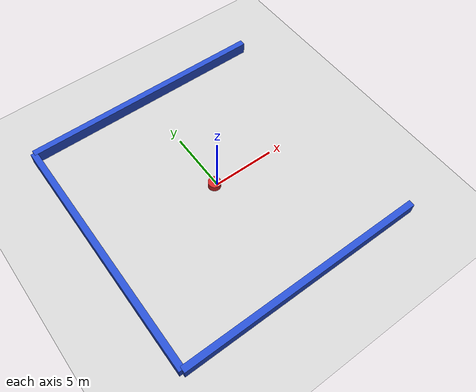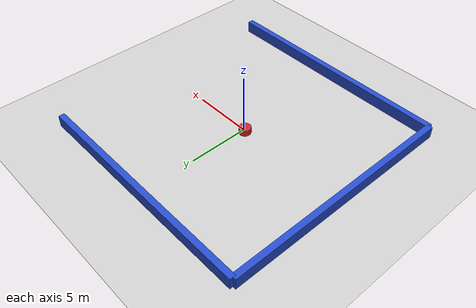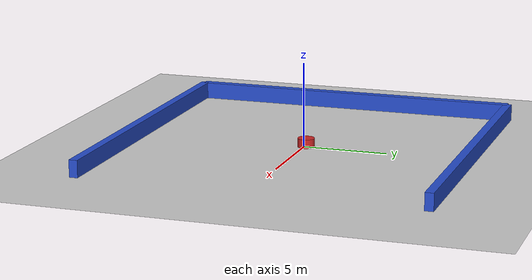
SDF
<?xml version="1.0" ?>
<sdf version="1.6">
   <world name="default">
    <model name="ground_plane">
      <static>1</static>
      <link name="link">
        <collision name="collision">
          <geometry><plane><normal>0 0 1</normal><size>100 100</size></plane></geometry>
          <surface><friction><ode><mu>100</mu><mu2>50</mu2></ode><torsional><ode/></torsional></friction><contact><ode/></contact></surface>
        </collision>
        <visual name="visual">
          <cast_shadows>0</cast_shadows>
          <geometry><plane><normal>0 0 1</normal><size>100 100</size></plane></geometry>
          <material><ambient>0.8 0.8 0.8 1</ambient><diffuse>0.8 0.8 0.8 1</diffuse><specular>0.01 0.01 0.01 1</specular></material>
        </visual>
      </link>
    </model>
    <light name="sun" type="directional">
      <cast_shadows>1</cast_shadows>
      <pose>0 0 10 0 0 0</pose>
      <diffuse>1 1 1 1</diffuse>
      <specular>0.1 0.1 0.1 1</specular>
      <attenuation><range>1000</range><constant>0.9</constant><linear>0.01</linear><quadratic>0.001</quadratic></attenuation>
      <direction>-0.5 0.5 -1</direction>
    </light>

    <model name='hardlibobs_121'>
      <static>1</static>
      <pose frame=''>-0.225000 0.075000 0.000000 0.000000 0.000000 0.000000</pose>
      <link name='link'>
        <inertial>
          <mass>1</mass>
          <inertia>
            <ixx>0.145833</ixx>
            <ixy>0</ixy>
            <ixz>0</ixz>
            <iyy>0.145833</iyy>
            <iyz>0</iyz>
            <izz>0.125</izz>
          </inertia>
        </inertial>
        <collision name='collision'>
           <geometry>
            <cylinder>
                <radius>0.5000</radius>
                 <length> 1 </length>
            </cylinder>
          </geometry>
           <surface>
            <contact>
              <ode/>
            </contact>
            <bounce/>
            <friction>
              <torsional>
                <ode/>
              </torsional>
              <ode/>
            </friction>
          </surface>
        </collision>
        <visual name='visual'>
           <geometry>
            <cylinder>
                <radius>0.5000</radius>
                 <length> 1 </length>
            </cylinder>
          </geometry>
          <material>
            <script>
              <name>Gazebo/Red</name>
              <uri>file://media/materials/scripts/gazebo.material</uri>
            </script>
          </material>
        </visual>
        <self_collide>0</self_collide>
        <kinematic>0</kinematic>
        <gravity>1</gravity>
      </link>
      <plugin name='hardlibobs_121' filename='hardlibobs_121.so'/>
    </model>

    <model name='hardlibobs_14'>
      <static>1</static>
      <pose frame=''>-0.225000 0.075000 0.000000 0.000000 0.000000 0.000000</pose>
      <link name='link'>
        <inertial>
          <mass>1</mass>
          <inertia>
            <ixx>0.145833</ixx>
            <ixy>0</ixy>
            <ixz>0</ixz>
            <iyy>0.145833</iyy>
            <iyz>0</iyz>
            <izz>0.125</izz>
          </inertia>
        </inertial>
        <collision name='collision'>
           <geometry>
            <cylinder>
                <radius>0.5000</radius>
                 <length> 1 </length>
            </cylinder>
          </geometry>
           <surface>
            <contact>
              <ode/>
            </contact>
            <bounce/>
            <friction>
              <torsional>
                <ode/>
              </torsional>
              <ode/>
            </friction>
          </surface>
        </collision>
        <visual name='visual'>
           <geometry>
            <cylinder>
                <radius>0.5000</radius>
                 <length> 1 </length>
            </cylinder>
          </geometry>
          <material>
            <script>
              <name>Gazebo/Red</name>
              <uri>file://media/materials/scripts/gazebo.material</uri>
            </script>
          </material>
        </visual>
        <self_collide>0</self_collide>
        <kinematic>0</kinematic>
        <gravity>1</gravity>
      </link>
      <plugin name='hardlibobs_14' filename='hardlibobs_14.so'/>
    </model>

    <model name='hardlibobs_34'>
      <static>1</static>
      <pose frame=''>-0.225000 0.075000 0.000000 0.000000 0.000000 0.000000</pose>
      <link name='link'>
        <inertial>
          <mass>1</mass>
          <inertia>
            <ixx>0.145833</ixx>
            <ixy>0</ixy>
            <ixz>0</ixz>
            <iyy>0.145833</iyy>
            <iyz>0</iyz>
            <izz>0.125</izz>
          </inertia>
        </inertial>
        <collision name='collision'>
           <geometry>
            <cylinder>
                <radius>0.5000</radius>
                 <length> 1 </length>
            </cylinder>
          </geometry>
           <surface>
            <contact>
              <ode/>
            </contact>
            <bounce/>
            <friction>
              <torsional>
                <ode/>
              </torsional>
              <ode/>
            </friction>
          </surface>
        </collision>
        <visual name='visual'>
           <geometry>
            <cylinder>
                <radius>0.5000</radius>
                 <length> 1 </length>
            </cylinder>
          </geometry>
          <material>
            <script>
              <name>Gazebo/Red</name>
              <uri>file://media/materials/scripts/gazebo.material</uri>
            </script>
          </material>
        </visual>
        <self_collide>0</self_collide>
        <kinematic>0</kinematic>
        <gravity>1</gravity>
      </link>
      <plugin name='hardlibobs_34' filename='hardlibobs_34.so'/>
    </model>

    <model name='hardlibobs_149'>
      <static>1</static>
      <pose frame=''>-0.225000 0.075000 0.000000 0.000000 0.000000 0.000000</pose>
      <link name='link'>
        <inertial>
          <mass>1</mass>
          <inertia>
            <ixx>0.145833</ixx>
            <ixy>0</ixy>
            <ixz>0</ixz>
            <iyy>0.145833</iyy>
            <iyz>0</iyz>
            <izz>0.125</izz>
          </inertia>
        </inertial>
        <collision name='collision'>
           <geometry>
            <cylinder>
                <radius>0.5000</radius>
                 <length> 1 </length>
            </cylinder>
          </geometry>
           <surface>
            <contact>
              <ode/>
            </contact>
            <bounce/>
            <friction>
              <torsional>
                <ode/>
              </torsional>
              <ode/>
            </friction>
          </surface>
        </collision>
        <visual name='visual'>
           <geometry>
            <cylinder>
                <radius>0.5000</radius>
                 <length> 1 </length>
            </cylinder>
          </geometry>
          <material>
            <script>
              <name>Gazebo/Red</name>
              <uri>file://media/materials/scripts/gazebo.material</uri>
            </script>
          </material>
        </visual>
        <self_collide>0</self_collide>
        <kinematic>0</kinematic>
        <gravity>1</gravity>
      </link>
      <plugin name='hardlibobs_149' filename='hardlibobs_149.so'/>
    </model>

    <model name='hardlibobs_132'>
      <static>1</static>
      <pose frame=''>-0.225000 0.075000 0.000000 0.000000 0.000000 0.000000</pose>
      <link name='link'>
        <inertial>
          <mass>1</mass>
          <inertia>
            <ixx>0.145833</ixx>
            <ixy>0</ixy>
            <ixz>0</ixz>
            <iyy>0.145833</iyy>
            <iyz>0</iyz>
            <izz>0.125</izz>
          </inertia>
        </inertial>
        <collision name='collision'>
           <geometry>
            <cylinder>
                <radius>0.5000</radius>
                 <length> 1 </length>
            </cylinder>
          </geometry>
           <surface>
            <contact>
              <ode/>
            </contact>
            <bounce/>
            <friction>
              <torsional>
                <ode/>
              </torsional>
              <ode/>
            </friction>
          </surface>
        </collision>
        <visual name='visual'>
           <geometry>
            <cylinder>
                <radius>0.5000</radius>
                 <length> 1 </length>
            </cylinder>
          </geometry>
          <material>
            <script>
              <name>Gazebo/Red</name>
              <uri>file://media/materials/scripts/gazebo.material</uri>
            </script>
          </material>
        </visual>
        <self_collide>0</self_collide>
        <kinematic>0</kinematic>
        <gravity>1</gravity>
      </link>
      <plugin name='hardlibobs_132' filename='hardlibobs_132.so'/>
    </model>

    <model name='hardlibobs_198'>
      <static>1</static>
      <pose frame=''>-0.225000 0.075000 0.000000 0.000000 0.000000 0.000000</pose>
      <link name='link'>
        <inertial>
          <mass>1</mass>
          <inertia>
            <ixx>0.145833</ixx>
            <ixy>0</ixy>
            <ixz>0</ixz>
            <iyy>0.145833</iyy>
            <iyz>0</iyz>
            <izz>0.125</izz>
          </inertia>
        </inertial>
        <collision name='collision'>
           <geometry>
            <cylinder>
                <radius>0.5000</radius>
                 <length> 1 </length>
            </cylinder>
          </geometry>
           <surface>
            <contact>
              <ode/>
            </contact>
            <bounce/>
            <friction>
              <torsional>
                <ode/>
              </torsional>
              <ode/>
            </friction>
          </surface>
        </collision>
        <visual name='visual'>
           <geometry>
            <cylinder>
                <radius>0.5000</radius>
                 <length> 1 </length>
            </cylinder>
          </geometry>
          <material>
            <script>
              <name>Gazebo/Red</name>
              <uri>file://media/materials/scripts/gazebo.material</uri>
            </script>
          </material>
        </visual>
        <self_collide>0</self_collide>
        <kinematic>0</kinematic>
        <gravity>1</gravity>
      </link>
      <plugin name='hardlibobs_198' filename='hardlibobs_198.so'/>
    </model>

    <model name='hardlibobs_196'>
      <static>1</static>
      <pose frame=''>-0.225000 0.075000 0.000000 0.000000 0.000000 0.000000</pose>
      <link name='link'>
        <inertial>
          <mass>1</mass>
          <inertia>
            <ixx>0.145833</ixx>
            <ixy>0</ixy>
            <ixz>0</ixz>
            <iyy>0.145833</iyy>
            <iyz>0</iyz>
            <izz>0.125</izz>
          </inertia>
        </inertial>
        <collision name='collision'>
           <geometry>
            <cylinder>
                <radius>0.5000</radius>
                 <length> 1 </length>
            </cylinder>
          </geometry>
           <surface>
            <contact>
              <ode/>
            </contact>
            <bounce/>
            <friction>
              <torsional>
                <ode/>
              </torsional>
              <ode/>
            </friction>
          </surface>
        </collision>
        <visual name='visual'>
           <geometry>
            <cylinder>
                <radius>0.5000</radius>
                 <length> 1 </length>
            </cylinder>
          </geometry>
          <material>
            <script>
              <name>Gazebo/Red</name>
              <uri>file://media/materials/scripts/gazebo.material</uri>
            </script>
          </material>
        </visual>
        <self_collide>0</self_collide>
        <kinematic>0</kinematic>
        <gravity>1</gravity>
      </link>
      <plugin name='hardlibobs_196' filename='hardlibobs_196.so'/>
    </model>

    <model name='hardlibobs_50'>
      <static>1</static>
      <pose frame=''>-0.225000 0.075000 0.000000 0.000000 0.000000 0.000000</pose>
      <link name='link'>
        <inertial>
          <mass>1</mass>
          <inertia>
            <ixx>0.145833</ixx>
            <ixy>0</ixy>
            <ixz>0</ixz>
            <iyy>0.145833</iyy>
            <iyz>0</iyz>
            <izz>0.125</izz>
          </inertia>
        </inertial>
        <collision name='collision'>
           <geometry>
            <cylinder>
                <radius>0.5000</radius>
                 <length> 1 </length>
            </cylinder>
          </geometry>
           <surface>
            <contact>
              <ode/>
            </contact>
            <bounce/>
            <friction>
              <torsional>
                <ode/>
              </torsional>
              <ode/>
            </friction>
          </surface>
        </collision>
        <visual name='visual'>
           <geometry>
            <cylinder>
                <radius>0.5000</radius>
                 <length> 1 </length>
            </cylinder>
          </geometry>
          <material>
            <script>
              <name>Gazebo/Red</name>
              <uri>file://media/materials/scripts/gazebo.material</uri>
            </script>
          </material>
        </visual>
        <self_collide>0</self_collide>
        <kinematic>0</kinematic>
        <gravity>1</gravity>
      </link>
      <plugin name='hardlibobs_50' filename='hardlibobs_50.so'/>
    </model>

    <model name='hardlibobs_29'>
      <static>1</static>
      <pose frame=''>-0.225000 0.075000 0.000000 0.000000 0.000000 0.000000</pose>
      <link name='link'>
        <inertial>
          <mass>1</mass>
          <inertia>
            <ixx>0.145833</ixx>
            <ixy>0</ixy>
            <ixz>0</ixz>
            <iyy>0.145833</iyy>
            <iyz>0</iyz>
            <izz>0.125</izz>
          </inertia>
        </inertial>
        <collision name='collision'>
           <geometry>
            <cylinder>
                <radius>0.5000</radius>
                 <length> 1 </length>
            </cylinder>
          </geometry>
           <surface>
            <contact>
              <ode/>
            </contact>
            <bounce/>
            <friction>
              <torsional>
                <ode/>
              </torsional>
              <ode/>
            </friction>
          </surface>
        </collision>
        <visual name='visual'>
           <geometry>
            <cylinder>
                <radius>0.5000</radius>
                 <length> 1 </length>
            </cylinder>
          </geometry>
          <material>
            <script>
              <name>Gazebo/Red</name>
              <uri>file://media/materials/scripts/gazebo.material</uri>
            </script>
          </material>
        </visual>
        <self_collide>0</self_collide>
        <kinematic>0</kinematic>
        <gravity>1</gravity>
      </link>
      <plugin name='hardlibobs_29' filename='hardlibobs_29.so'/>
    </model>

    <model name='hardlibobs_100'>
      <static>1</static>
      <pose frame=''>-0.225000 0.075000 0.000000 0.000000 0.000000 0.000000</pose>
      <link name='link'>
        <inertial>
          <mass>1</mass>
          <inertia>
            <ixx>0.145833</ixx>
            <ixy>0</ixy>
            <ixz>0</ixz>
            <iyy>0.145833</iyy>
            <iyz>0</iyz>
            <izz>0.125</izz>
          </inertia>
        </inertial>
        <collision name='collision'>
           <geometry>
            <cylinder>
                <radius>0.5000</radius>
                 <length> 1 </length>
            </cylinder>
          </geometry>
           <surface>
            <contact>
              <ode/>
            </contact>
            <bounce/>
            <friction>
              <torsional>
                <ode/>
              </torsional>
              <ode/>
            </friction>
          </surface>
        </collision>
        <visual name='visual'>
           <geometry>
            <cylinder>
                <radius>0.5000</radius>
                 <length> 1 </length>
            </cylinder>
          </geometry>
          <material>
            <script>
              <name>Gazebo/Red</name>
              <uri>file://media/materials/scripts/gazebo.material</uri>
            </script>
          </material>
        </visual>
        <self_collide>0</self_collide>
        <kinematic>0</kinematic>
        <gravity>1</gravity>
      </link>
      <plugin name='hardlibobs_100' filename='hardlibobs_100.so'/>
    </model>

    <model name='hardlibobs_182'>
      <static>1</static>
      <pose frame=''>-0.225000 0.075000 0.000000 0.000000 0.000000 0.000000</pose>
      <link name='link'>
        <inertial>
          <mass>1</mass>
          <inertia>
            <ixx>0.145833</ixx>
            <ixy>0</ixy>
            <ixz>0</ixz>
            <iyy>0.145833</iyy>
            <iyz>0</iyz>
            <izz>0.125</izz>
          </inertia>
        </inertial>
        <collision name='collision'>
           <geometry>
            <cylinder>
                <radius>0.5000</radius>
                 <length> 1 </length>
            </cylinder>
          </geometry>
           <surface>
            <contact>
              <ode/>
            </contact>
            <bounce/>
            <friction>
              <torsional>
                <ode/>
              </torsional>
              <ode/>
            </friction>
          </surface>
        </collision>
        <visual name='visual'>
           <geometry>
            <cylinder>
                <radius>0.5000</radius>
                 <length> 1 </length>
            </cylinder>
          </geometry>
          <material>
            <script>
              <name>Gazebo/Red</name>
              <uri>file://media/materials/scripts/gazebo.material</uri>
            </script>
          </material>
        </visual>
        <self_collide>0</self_collide>
        <kinematic>0</kinematic>
        <gravity>1</gravity>
      </link>
      <plugin name='hardlibobs_182' filename='hardlibobs_182.so'/>
    </model>

    <model name='hardlibobs_102'>
      <static>1</static>
      <pose frame=''>-0.225000 0.075000 0.000000 0.000000 0.000000 0.000000</pose>
      <link name='link'>
        <inertial>
          <mass>1</mass>
          <inertia>
            <ixx>0.145833</ixx>
            <ixy>0</ixy>
            <ixz>0</ixz>
            <iyy>0.145833</iyy>
            <iyz>0</iyz>
            <izz>0.125</izz>
          </inertia>
        </inertial>
        <collision name='collision'>
           <geometry>
            <cylinder>
                <radius>0.5000</radius>
                 <length> 1 </length>
            </cylinder>
          </geometry>
           <surface>
            <contact>
              <ode/>
            </contact>
            <bounce/>
            <friction>
              <torsional>
                <ode/>
              </torsional>
              <ode/>
            </friction>
          </surface>
        </collision>
        <visual name='visual'>
           <geometry>
            <cylinder>
                <radius>0.5000</radius>
                 <length> 1 </length>
            </cylinder>
          </geometry>
          <material>
            <script>
              <name>Gazebo/Red</name>
              <uri>file://media/materials/scripts/gazebo.material</uri>
            </script>
          </material>
        </visual>
        <self_collide>0</self_collide>
        <kinematic>0</kinematic>
        <gravity>1</gravity>
      </link>
      <plugin name='hardlibobs_102' filename='hardlibobs_102.so'/>
    </model>

    <model name='hardlibobs_30'>
      <static>1</static>
      <pose frame=''>-0.225000 0.075000 0.000000 0.000000 0.000000 0.000000</pose>
      <link name='link'>
        <inertial>
          <mass>1</mass>
          <inertia>
            <ixx>0.145833</ixx>
            <ixy>0</ixy>
            <ixz>0</ixz>
            <iyy>0.145833</iyy>
            <iyz>0</iyz>
            <izz>0.125</izz>
          </inertia>
        </inertial>
        <collision name='collision'>
           <geometry>
            <cylinder>
                <radius>0.5000</radius>
                 <length> 1 </length>
            </cylinder>
          </geometry>
           <surface>
            <contact>
              <ode/>
            </contact>
            <bounce/>
            <friction>
              <torsional>
                <ode/>
              </torsional>
              <ode/>
            </friction>
          </surface>
        </collision>
        <visual name='visual'>
           <geometry>
            <cylinder>
                <radius>0.5000</radius>
                 <length> 1 </length>
            </cylinder>
          </geometry>
          <material>
            <script>
              <name>Gazebo/Red</name>
              <uri>file://media/materials/scripts/gazebo.material</uri>
            </script>
          </material>
        </visual>
        <self_collide>0</self_collide>
        <kinematic>0</kinematic>
        <gravity>1</gravity>
      </link>
      <plugin name='hardlibobs_30' filename='hardlibobs_30.so'/>
    </model>

    <model name='hardlibobs_157'>
      <static>1</static>
      <pose frame=''>-0.225000 0.075000 0.000000 0.000000 0.000000 0.000000</pose>
      <link name='link'>
        <inertial>
          <mass>1</mass>
          <inertia>
            <ixx>0.145833</ixx>
            <ixy>0</ixy>
            <ixz>0</ixz>
            <iyy>0.145833</iyy>
            <iyz>0</iyz>
            <izz>0.125</izz>
          </inertia>
        </inertial>
        <collision name='collision'>
           <geometry>
            <cylinder>
                <radius>0.5000</radius>
                 <length> 1 </length>
            </cylinder>
          </geometry>
           <surface>
            <contact>
              <ode/>
            </contact>
            <bounce/>
            <friction>
              <torsional>
                <ode/>
              </torsional>
              <ode/>
            </friction>
          </surface>
        </collision>
        <visual name='visual'>
           <geometry>
            <cylinder>
                <radius>0.5000</radius>
                 <length> 1 </length>
            </cylinder>
          </geometry>
          <material>
            <script>
              <name>Gazebo/Red</name>
              <uri>file://media/materials/scripts/gazebo.material</uri>
            </script>
          </material>
        </visual>
        <self_collide>0</self_collide>
        <kinematic>0</kinematic>
        <gravity>1</gravity>
      </link>
      <plugin name='hardlibobs_157' filename='hardlibobs_157.so'/>
    </model>

      <model name="back_wall">
      <static>1</static>\   <pose>-10 0 .5 0 0 0</pose>        <link name="box_link">

	<collision name='collision'>
            <geometry>
              <box>
                <size>.5 20 1</size>
              </box>
            </geometry>
           <surface>
            <contact>
              <ode/>
            </contact>
            <bounce/>
            <friction>
              <torsional>
                <ode/>
              </torsional>
              <ode/>
            </friction>
          </surface>
        </collision>

          <visual name="visual">
            <geometry>
              <box>
                <size>.5 20 1</size>
              </box>
            </geometry>
          <material>
                 <script>
                     <name>Gazebo/Blue</name>
                         <uri>file://media/materials/scripts/gazebo.material</uri>
                         </script>
                     </material>
          </visual>
        </link>
      </model>
      <model name="top_wall">
      <static>1</static>
       <pose>0 10 .5 0 0 0</pose>        <link name="box_link">

	<collision name='collision'>
           <geometry>
              <box>
                <size>20 .5 1</size>
              </box>
            </geometry>
           <surface>
            <contact>
              <ode/>
            </contact>
            <bounce/>
            <friction>
              <torsional>
                <ode/>
              </torsional>
              <ode/>
            </friction>
          </surface>
        </collision>
          <visual name="visual">
            <geometry>
              <box>
                <size>20 .5 1</size>
              </box>
            </geometry>
          <material>
                 <script>
                     <name>Gazebo/Blue</name>
                         <uri>file://media/materials/scripts/gazebo.material</uri>
                         </script>
                     </material>
          </visual>
        </link>
      </model>
      <model name="bottom_wall">
      <static>1</static>
       <pose>0 -10 .5 0 0 0</pose>        <link name="box_link">
	<collision name='collision'>
            <geometry>
              <box>
                <size>20 .5 1</size>
              </box>
            </geometry>
           <surface>
            <contact>
              <ode/>
            </contact>
            <bounce/>
            <friction>
              <torsional>
                <ode/>
              </torsional>
              <ode/>
            </friction>
          </surface>
        </collision>
          <visual name="visual">
            <geometry>
              <box>
                <size>20 .5 1</size>
              </box>
            </geometry>
          <material>
                 <script>
                     <name>Gazebo/Blue</name>
                         <uri>file://media/materials/scripts/gazebo.material</uri>
                         </script>
                     </material>
          </visual>
        </link>
      </model>
   </world>
</sdf>
